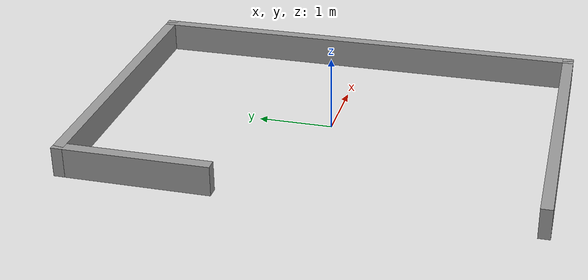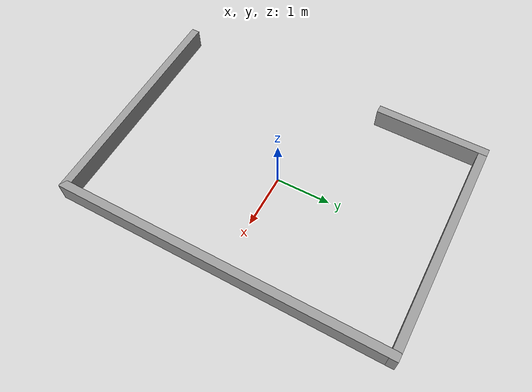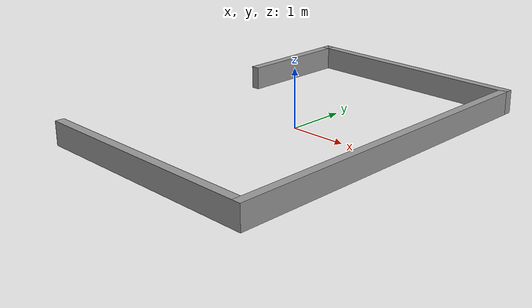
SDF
<?xml version='1.0'?>
<sdf version='1.6'>
  <model name='new_robot_trap'>
    <pose frame=''>0 0 0 0 -0 0</pose>
    <link name='Wall_0'>
      <collision name='Wall_0_Collision'>
        <geometry>
          <box>
            <size>6.15 0.15 0.4</size>
          </box>
        </geometry>
        <pose frame=''>0 0 0.2 0 -0 0</pose>
      </collision>
      <visual name='Wall_0_Visual'>
        <pose frame=''>0 0 0.2 0 -0 0</pose>
        <geometry>
          <box>
            <size>6.15 0.15 0.4</size>
          </box>
        </geometry>
        <material>
          <script>
            <uri>file://media/materials/scripts/gazebo.material</uri>
            <name>Gazebo/Grey</name>
          </script>
          <ambient>1 1 1 1</ambient>
        </material>
        <meta>
          <layer>0</layer>
        </meta>
      </visual>
      <pose frame=''>2 0 0 0 -0 1.5708</pose>
    </link>
    <link name='Wall_2'>
      <collision name='Wall_2_Collision'>
        <geometry>
          <box>
            <size>4.15 0.15 0.4</size>
          </box>
        </geometry>
        <pose frame=''>0 0 0.2 0 -0 0</pose>
      </collision>
      <visual name='Wall_2_Visual'>
        <pose frame=''>0 0 0.2 0 -0 0</pose>
        <geometry>
          <box>
            <size>4.15 0.15 0.4</size>
          </box>
        </geometry>
        <material>
          <script>
            <uri>file://media/materials/scripts/gazebo.material</uri>
            <name>Gazebo/Grey</name>
          </script>
          <ambient>1 1 1 1</ambient>
        </material>
        <meta>
          <layer>0</layer>
        </meta>
      </visual>
      <pose frame=''>0 3 0 0 -0 3.14159</pose>
    </link>
    <link name='Wall_3'>
      <collision name='Wall_3_Collision'>
        <geometry>
          <box>
            <size>2.065 0.15 0.4</size>
          </box>
        </geometry>
        <pose frame=''>0 0 0.2 0 -0 0</pose>
      </collision>
      <visual name='Wall_3_Visual'>
        <pose frame=''>0 0 0.2 0 -0 0</pose>
        <geometry>
          <box>
            <size>2.065 0.15 0.4</size>
          </box>
        </geometry>
        <material>
          <script>
            <uri>file://media/materials/scripts/gazebo.material</uri>
            <name>Gazebo/Grey</name>
          </script>
          <ambient>1 1 1 1</ambient>
        </material>
        <meta>
          <layer>0</layer>
        </meta>
      </visual>
      <pose frame=''>-2 2.0425 0 0 0 -1.5708</pose>
    </link>
    <link name='Wall_5'>
      <collision name='Wall_5_Collision'>
        <geometry>
          <box>
            <size>4.15 0.15 0.4</size>
          </box>
        </geometry>
        <pose frame=''>0 0 0.2 0 -0 0</pose>
      </collision>
      <visual name='Wall_5_Visual'>
        <pose frame=''>0 0 0.2 0 -0 0</pose>
        <geometry>
          <box>
            <size>4.15 0.15 0.4</size>
          </box>
        </geometry>
        <material>
          <script>
            <uri>file://media/materials/scripts/gazebo.material</uri>
            <name>Gazebo/Grey</name>
          </script>
          <ambient>1 1 1 1</ambient>
        </material>
        <meta>
          <layer>0</layer>
        </meta>
      </visual>
      <pose frame=''>0 -3 0 0 -0 3.14159</pose>
    </link>
    <static>1</static>
  </model>
</sdf>
